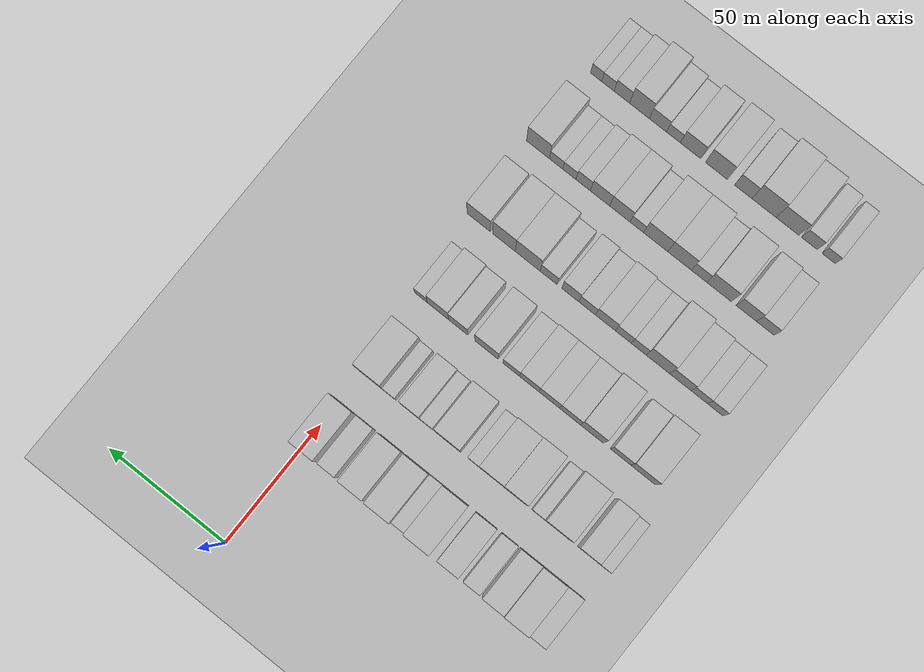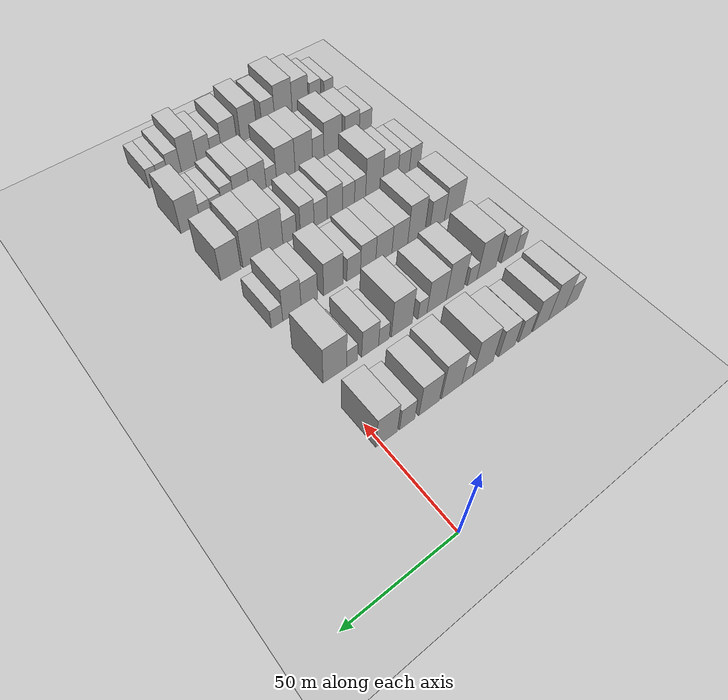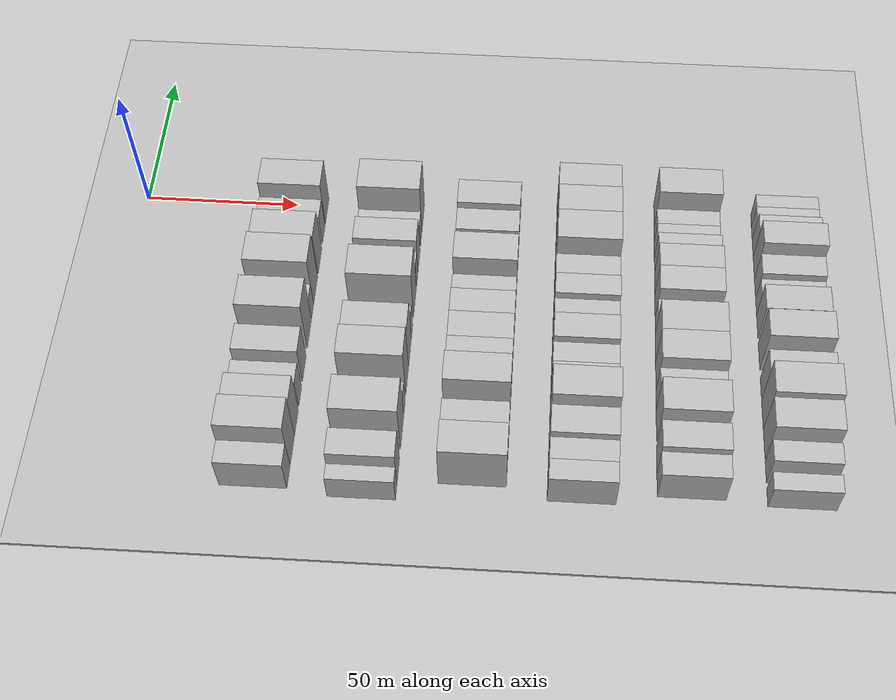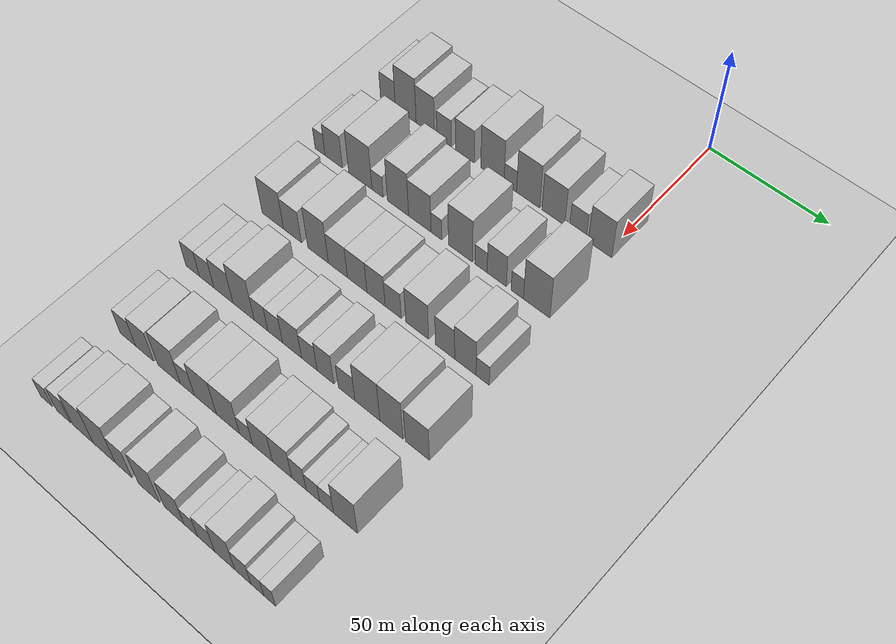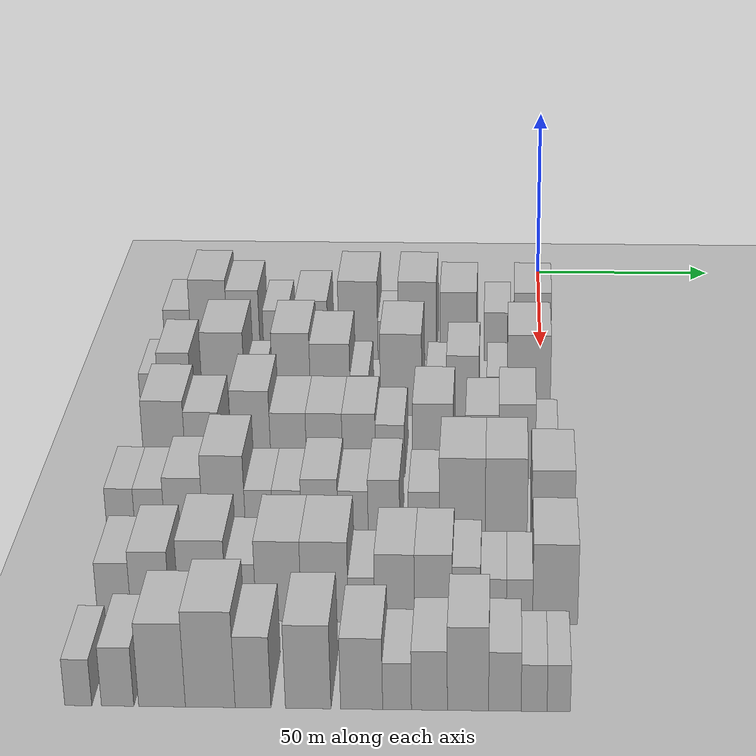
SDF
<sdf version="1.6">
 <world name="default">
  <include><name>ground_plane_1</name><uri>model://HANNAS_ground_plane</uri></include>
  <include>
   <name>ground_plane_2</name>
   <uri>model://HANNAS_ground_plane</uri>
   <pose>100 0 0  0 0 0</pose>
  </include>
  <model name="building_50">
   <static>1</static>
   <pose>50.0000 -99.4085 0 0.000000 0.000000 0.000000</pose>
   <link name="link">
    <pose>0 0 7.50 0 0 0</pose>
    <collision name="collision"><geometry><box><size>20.0000 7.2495 15.0000</size></box></geometry></collision>
    <visual name="visual">
     <cast_shadows>0</cast_shadows>
     <geometry><box><size>20.0000 7.2495 15.0000</size></box></geometry>
     <material>
      <script>
       <uri>model://HANNAS_wall/materials/scripts</uri>
       <uri>model://HANNAS_wall/materials/textures</uri>
       <name>vrc/HANNAS_wall</name>
      </script>
     </material>
    </visual>
   </link>
  </model>
  <model name="building_51">
   <static>1</static>
   <pose>50.0000 -90.7654 0 0.000000 0.000000 0.000000</pose>
   <link name="link">
    <pose>0 0 12.00 0 0 0</pose>
    <collision name="collision"><geometry><box><size>20.0000 10.0367 24.0000</size></box></geometry></collision>
    <visual name="visual">
     <cast_shadows>0</cast_shadows>
     <geometry><box><size>20.0000 10.0367 24.0000</size></box></geometry>
     <material>
      <script>
       <uri>model://HANNAS_wall/materials/scripts</uri>
       <uri>model://HANNAS_wall/materials/textures</uri>
       <name>vrc/HANNAS_wall</name>
      </script>
     </material>
    </visual>
   </link>
  </model>
  <model name="building_52">
   <static>1</static>
   <pose>50.0000 -81.3214 0 0.000000 0.000000 0.000000</pose>
   <link name="link">
    <pose>0 0 10.50 0 0 0</pose>
    <collision name="collision"><geometry><box><size>20.0000 8.8512 21.0000</size></box></geometry></collision>
    <visual name="visual">
     <cast_shadows>0</cast_shadows>
     <geometry><box><size>20.0000 8.8512 21.0000</size></box></geometry>
     <material>
      <script>
       <uri>model://HANNAS_wall/materials/scripts</uri>
       <uri>model://HANNAS_wall/materials/textures</uri>
       <name>vrc/HANNAS_wall</name>
      </script>
     </material>
    </visual>
   </link>
  </model>
  <model name="building_53">
   <static>1</static>
   <pose>50.0000 -72.4730 0 0.000000 0.000000 0.000000</pose>
   <link name="link">
    <pose>0 0 7.50 0 0 0</pose>
    <collision name="collision"><geometry><box><size>20.0000 6.8455 15.0000</size></box></geometry></collision>
    <visual name="visual">
     <cast_shadows>0</cast_shadows>
     <geometry><box><size>20.0000 6.8455 15.0000</size></box></geometry>
     <material>
      <script>
       <uri>model://HANNAS_wall/materials/scripts</uri>
       <uri>model://HANNAS_wall/materials/textures</uri>
       <name>vrc/HANNAS_wall</name>
      </script>
     </material>
    </visual>
   </link>
  </model>
  <model name="building_54">
   <static>1</static>
   <pose>50.0000 -62.6387 0 0.000000 0.000000 0.000000</pose>
   <link name="link">
    <pose>0 0 9.00 0 0 0</pose>
    <collision name="collision"><geometry><box><size>20.0000 8.8231 18.0000</size></box></geometry></collision>
    <visual name="visual">
     <cast_shadows>0</cast_shadows>
     <geometry><box><size>20.0000 8.8231 18.0000</size></box></geometry>
     <material>
      <script>
       <uri>model://HANNAS_wall/materials/scripts</uri>
       <uri>model://HANNAS_wall/materials/textures</uri>
       <name>vrc/HANNAS_wall</name>
      </script>
     </material>
    </visual>
   </link>
  </model>
  <model name="building_55">
   <static>1</static>
   <pose>50.0000 -49.9104 0 0.000000 0.000000 0.000000</pose>
   <link name="link">
    <pose>0 0 12.00 0 0 0</pose>
    <collision name="collision"><geometry><box><size>20.0000 10.6335 24.0000</size></box></geometry></collision>
    <visual name="visual">
     <cast_shadows>0</cast_shadows>
     <geometry><box><size>20.0000 10.6335 24.0000</size></box></geometry>
     <material>
      <script>
       <uri>model://HANNAS_wall/materials/scripts</uri>
       <uri>model://HANNAS_wall/materials/textures</uri>
       <name>vrc/HANNAS_wall</name>
      </script>
     </material>
    </visual>
   </link>
  </model>
  <model name="building_56">
   <static>1</static>
   <pose>50.0000 -41.7730 0 0.000000 0.000000 0.000000</pose>
   <link name="link">
    <pose>0 0 6.00 0 0 0</pose>
    <collision name="collision"><geometry><box><size>20.0000 5.6413 12.0000</size></box></geometry></collision>
    <visual name="visual">
     <cast_shadows>0</cast_shadows>
     <geometry><box><size>20.0000 5.6413 12.0000</size></box></geometry>
     <material>
      <script>
       <uri>model://HANNAS_wall/materials/scripts</uri>
       <uri>model://HANNAS_wall/materials/textures</uri>
       <name>vrc/HANNAS_wall</name>
      </script>
     </material>
    </visual>
   </link>
  </model>
  <model name="building_57">
   <static>1</static>
   <pose>50.0000 -33.7671 0 0.000000 0.000000 0.000000</pose>
   <link name="link">
    <pose>0 0 12.00 0 0 0</pose>
    <collision name="collision"><geometry><box><size>20.0000 10.3705 24.0000</size></box></geometry></collision>
    <visual name="visual">
     <cast_shadows>0</cast_shadows>
     <geometry><box><size>20.0000 10.3705 24.0000</size></box></geometry>
     <material>
      <script>
       <uri>model://HANNAS_wall/materials/scripts</uri>
       <uri>model://HANNAS_wall/materials/textures</uri>
       <name>vrc/HANNAS_wall</name>
      </script>
     </material>
    </visual>
   </link>
  </model>
  <model name="building_58">
   <static>1</static>
   <pose>50.0000 -22.5808 0 0.000000 0.000000 0.000000</pose>
   <link name="link">
    <pose>0 0 10.50 0 0 0</pose>
    <collision name="collision"><geometry><box><size>20.0000 10.0020 21.0000</size></box></geometry></collision>
    <visual name="visual">
     <cast_shadows>0</cast_shadows>
     <geometry><box><size>20.0000 10.0020 21.0000</size></box></geometry>
     <material>
      <script>
       <uri>model://HANNAS_wall/materials/scripts</uri>
       <uri>model://HANNAS_wall/materials/textures</uri>
       <name>vrc/HANNAS_wall</name>
      </script>
     </material>
    </visual>
   </link>
  </model>
  <model name="building_59">
   <static>1</static>
   <pose>50.0000 -11.9805 0 0.000000 0.000000 0.000000</pose>
   <link name="link">
    <pose>0 0 7.50 0 0 0</pose>
    <collision name="collision"><geometry><box><size>20.0000 7.1987 15.0000</size></box></geometry></collision>
    <visual name="visual">
     <cast_shadows>0</cast_shadows>
     <geometry><box><size>20.0000 7.1987 15.0000</size></box></geometry>
     <material>
      <script>
       <uri>model://HANNAS_wall/materials/scripts</uri>
       <uri>model://HANNAS_wall/materials/textures</uri>
       <name>vrc/HANNAS_wall</name>
      </script>
     </material>
    </visual>
   </link>
  </model>
  <model name="building_60">
   <static>1</static>
   <pose>50.0000 -2.3744 0 0.000000 0.000000 0.000000</pose>
   <link name="link">
    <pose>0 0 10.50 0 0 0</pose>
    <collision name="collision"><geometry><box><size>20.0000 10.0136 21.0000</size></box></geometry></collision>
    <visual name="visual">
     <cast_shadows>0</cast_shadows>
     <geometry><box><size>20.0000 10.0136 21.0000</size></box></geometry>
     <material>
      <script>
       <uri>model://HANNAS_wall/materials/scripts</uri>
       <uri>model://HANNAS_wall/materials/textures</uri>
       <name>vrc/HANNAS_wall</name>
      </script>
     </material>
    </visual>
   </link>
  </model>
  <model name="building_177">
   <static>1</static>
   <pose>82.0000 -102.4024 0 0.000000 0.000000 0.000000</pose>
   <link name="link">
    <pose>0 0 6.00 0 0 0</pose>
    <collision name="collision"><geometry><box><size>20.0000 4.8992 12.0000</size></box></geometry></collision>
    <visual name="visual">
     <cast_shadows>0</cast_shadows>
     <geometry><box><size>20.0000 4.8992 12.0000</size></box></geometry>
     <material>
      <script>
       <uri>model://HANNAS_wall/materials/scripts</uri>
       <uri>model://HANNAS_wall/materials/textures</uri>
       <name>vrc/HANNAS_wall</name>
      </script>
     </material>
    </visual>
   </link>
  </model>
  <model name="building_178">
   <static>1</static>
   <pose>82.0000 -95.7210 0 0.000000 0.000000 0.000000</pose>
   <link name="link">
    <pose>0 0 9.00 0 0 0</pose>
    <collision name="collision"><geometry><box><size>20.0000 8.4636 18.0000</size></box></geometry></collision>
    <visual name="visual">
     <cast_shadows>0</cast_shadows>
     <geometry><box><size>20.0000 8.4636 18.0000</size></box></geometry>
     <material>
      <script>
       <uri>model://HANNAS_wall/materials/scripts</uri>
       <uri>model://HANNAS_wall/materials/textures</uri>
       <name>vrc/HANNAS_wall</name>
      </script>
     </material>
    </visual>
   </link>
  </model>
  <model name="building_179">
   <static>1</static>
   <pose>82.0000 -82.9380 0 0.000000 0.000000 0.000000</pose>
   <link name="link">
    <pose>0 0 12.00 0 0 0</pose>
    <collision name="collision"><geometry><box><size>20.0000 11.1023 24.0000</size></box></geometry></collision>
    <visual name="visual">
     <cast_shadows>0</cast_shadows>
     <geometry><box><size>20.0000 11.1023 24.0000</size></box></geometry>
     <material>
      <script>
       <uri>model://HANNAS_wall/materials/scripts</uri>
       <uri>model://HANNAS_wall/materials/textures</uri>
       <name>vrc/HANNAS_wall</name>
      </script>
     </material>
    </visual>
   </link>
  </model>
  <model name="building_180">
   <static>1</static>
   <pose>82.0000 -74.7324 0 0.000000 0.000000 0.000000</pose>
   <link name="link">
    <pose>0 0 6.00 0 0 0</pose>
    <collision name="collision"><geometry><box><size>20.0000 5.3090 12.0000</size></box></geometry></collision>
    <visual name="visual">
     <cast_shadows>0</cast_shadows>
     <geometry><box><size>20.0000 5.3090 12.0000</size></box></geometry>
     <material>
      <script>
       <uri>model://HANNAS_wall/materials/scripts</uri>
       <uri>model://HANNAS_wall/materials/textures</uri>
       <name>vrc/HANNAS_wall</name>
      </script>
     </material>
    </visual>
   </link>
  </model>
  <model name="building_181">
   <static>1</static>
   <pose>82.0000 -65.1785 0 0.000000 0.000000 0.000000</pose>
   <link name="link">
    <pose>0 0 12.00 0 0 0</pose>
    <collision name="collision"><geometry><box><size>20.0000 9.7988 24.0000</size></box></geometry></collision>
    <visual name="visual">
     <cast_shadows>0</cast_shadows>
     <geometry><box><size>20.0000 9.7988 24.0000</size></box></geometry>
     <material>
      <script>
       <uri>model://HANNAS_wall/materials/scripts</uri>
       <uri>model://HANNAS_wall/materials/textures</uri>
       <name>vrc/HANNAS_wall</name>
      </script>
     </material>
    </visual>
   </link>
  </model>
  <model name="building_182">
   <static>1</static>
   <pose>82.0000 -55.1193 0 0.000000 0.000000 0.000000</pose>
   <link name="link">
    <pose>0 0 10.50 0 0 0</pose>
    <collision name="collision"><geometry><box><size>20.0000 10.3196 21.0000</size></box></geometry></collision>
    <visual name="visual">
     <cast_shadows>0</cast_shadows>
     <geometry><box><size>20.0000 10.3196 21.0000</size></box></geometry>
     <material>
      <script>
       <uri>model://HANNAS_wall/materials/scripts</uri>
       <uri>model://HANNAS_wall/materials/textures</uri>
       <name>vrc/HANNAS_wall</name>
      </script>
     </material>
    </visual>
   </link>
  </model>
  <model name="building_183">
   <static>1</static>
   <pose>82.0000 -47.5341 0 0.000000 0.000000 0.000000</pose>
   <link name="link">
    <pose>0 0 6.00 0 0 0</pose>
    <collision name="collision"><geometry><box><size>20.0000 4.8509 12.0000</size></box></geometry></collision>
    <visual name="visual">
     <cast_shadows>0</cast_shadows>
     <geometry><box><size>20.0000 4.8509 12.0000</size></box></geometry>
     <material>
      <script>
       <uri>model://HANNAS_wall/materials/scripts</uri>
       <uri>model://HANNAS_wall/materials/textures</uri>
       <name>vrc/HANNAS_wall</name>
      </script>
     </material>
    </visual>
   </link>
  </model>
  <model name="building_184">
   <static>1</static>
   <pose>82.0000 -36.7290 0 0.000000 0.000000 0.000000</pose>
   <link name="link">
    <pose>0 0 12.00 0 0 0</pose>
    <collision name="collision"><geometry><box><size>20.0000 10.7592 24.0000</size></box></geometry></collision>
    <visual name="visual">
     <cast_shadows>0</cast_shadows>
     <geometry><box><size>20.0000 10.7592 24.0000</size></box></geometry>
     <material>
      <script>
       <uri>model://HANNAS_wall/materials/scripts</uri>
       <uri>model://HANNAS_wall/materials/textures</uri>
       <name>vrc/HANNAS_wall</name>
      </script>
     </material>
    </visual>
   </link>
  </model>
  <model name="building_185">
   <static>1</static>
   <pose>82.0000 -27.6430 0 0.000000 0.000000 0.000000</pose>
   <link name="link">
    <pose>0 0 6.00 0 0 0</pose>
    <collision name="collision"><geometry><box><size>20.0000 5.4128 12.0000</size></box></geometry></collision>
    <visual name="visual">
     <cast_shadows>0</cast_shadows>
     <geometry><box><size>20.0000 5.4128 12.0000</size></box></geometry>
     <material>
      <script>
       <uri>model://HANNAS_wall/materials/scripts</uri>
       <uri>model://HANNAS_wall/materials/textures</uri>
       <name>vrc/HANNAS_wall</name>
      </script>
     </material>
    </visual>
   </link>
  </model>
  <model name="building_186">
   <static>1</static>
   <pose>82.0000 -20.7385 0 0.000000 0.000000 0.000000</pose>
   <link name="link">
    <pose>0 0 9.00 0 0 0</pose>
    <collision name="collision"><geometry><box><size>20.0000 8.3961 18.0000</size></box></geometry></collision>
    <visual name="visual">
     <cast_shadows>0</cast_shadows>
     <geometry><box><size>20.0000 8.3961 18.0000</size></box></geometry>
     <material>
      <script>
       <uri>model://HANNAS_wall/materials/scripts</uri>
       <uri>model://HANNAS_wall/materials/textures</uri>
       <name>vrc/HANNAS_wall</name>
      </script>
     </material>
    </visual>
   </link>
  </model>
  <model name="building_187">
   <static>1</static>
   <pose>82.0000 -11.8810 0 0.000000 0.000000 0.000000</pose>
   <link name="link">
    <pose>0 0 6.00 0 0 0</pose>
    <collision name="collision"><geometry><box><size>20.0000 5.3189 12.0000</size></box></geometry></collision>
    <visual name="visual">
     <cast_shadows>0</cast_shadows>
     <geometry><box><size>20.0000 5.3189 12.0000</size></box></geometry>
     <material>
      <script>
       <uri>model://HANNAS_wall/materials/scripts</uri>
       <uri>model://HANNAS_wall/materials/textures</uri>
       <name>vrc/HANNAS_wall</name>
      </script>
     </material>
    </visual>
   </link>
  </model>
  <model name="building_188">
   <static>1</static>
   <pose>82.0000 -3.6198 0 0.000000 0.000000 0.000000</pose>
   <link name="link">
    <pose>0 0 12.00 0 0 0</pose>
    <collision name="collision"><geometry><box><size>20.0000 11.2035 24.0000</size></box></geometry></collision>
    <visual name="visual">
     <cast_shadows>0</cast_shadows>
     <geometry><box><size>20.0000 11.2035 24.0000</size></box></geometry>
     <material>
      <script>
       <uri>model://HANNAS_wall/materials/scripts</uri>
       <uri>model://HANNAS_wall/materials/textures</uri>
       <name>vrc/HANNAS_wall</name>
      </script>
     </material>
    </visual>
   </link>
  </model>
  <model name="building_302">
   <static>1</static>
   <pose>114.0000 -93.7261 0 0.000000 0.000000 0.000000</pose>
   <link name="link">
    <pose>0 0 10.50 0 0 0</pose>
    <collision name="collision"><geometry><box><size>20.0000 10.3192 21.0000</size></box></geometry></collision>
    <visual name="visual">
     <cast_shadows>0</cast_shadows>
     <geometry><box><size>20.0000 10.3192 21.0000</size></box></geometry>
     <material>
      <script>
       <uri>model://HANNAS_wall/materials/scripts</uri>
       <uri>model://HANNAS_wall/materials/textures</uri>
       <name>vrc/HANNAS_wall</name>
      </script>
     </material>
    </visual>
   </link>
  </model>
  <model name="building_303">
   <static>1</static>
   <pose>114.0000 -84.3029 0 0.000000 0.000000 0.000000</pose>
   <link name="link">
    <pose>0 0 9.00 0 0 0</pose>
    <collision name="collision"><geometry><box><size>20.0000 8.5273 18.0000</size></box></geometry></collision>
    <visual name="visual">
     <cast_shadows>0</cast_shadows>
     <geometry><box><size>20.0000 8.5273 18.0000</size></box></geometry>
     <material>
      <script>
       <uri>model://HANNAS_wall/materials/scripts</uri>
       <uri>model://HANNAS_wall/materials/textures</uri>
       <name>vrc/HANNAS_wall</name>
      </script>
     </material>
    </visual>
   </link>
  </model>
  <model name="building_304">
   <static>1</static>
   <pose>114.0000 -72.2288 0 0.000000 0.000000 0.000000</pose>
   <link name="link">
    <pose>0 0 12.00 0 0 0</pose>
    <collision name="collision"><geometry><box><size>20.0000 9.6209 24.0000</size></box></geometry></collision>
    <visual name="visual">
     <cast_shadows>0</cast_shadows>
     <geometry><box><size>20.0000 9.6209 24.0000</size></box></geometry>
     <material>
      <script>
       <uri>model://HANNAS_wall/materials/scripts</uri>
       <uri>model://HANNAS_wall/materials/textures</uri>
       <name>vrc/HANNAS_wall</name>
      </script>
     </material>
    </visual>
   </link>
  </model>
  <model name="building_305">
   <static>1</static>
   <pose>114.0000 -63.0106 0 0.000000 0.000000 0.000000</pose>
   <link name="link">
    <pose>0 0 9.00 0 0 0</pose>
    <collision name="collision"><geometry><box><size>20.0000 8.8154 18.0000</size></box></geometry></collision>
    <visual name="visual">
     <cast_shadows>0</cast_shadows>
     <geometry><box><size>20.0000 8.8154 18.0000</size></box></geometry>
     <material>
      <script>
       <uri>model://HANNAS_wall/materials/scripts</uri>
       <uri>model://HANNAS_wall/materials/textures</uri>
       <name>vrc/HANNAS_wall</name>
      </script>
     </material>
    </visual>
   </link>
  </model>
  <model name="building_306">
   <static>1</static>
   <pose>114.0000 -54.1677 0 0.000000 0.000000 0.000000</pose>
   <link name="link">
    <pose>0 0 9.00 0 0 0</pose>
    <collision name="collision"><geometry><box><size>20.0000 8.8706 18.0000</size></box></geometry></collision>
    <visual name="visual">
     <cast_shadows>0</cast_shadows>
     <geometry><box><size>20.0000 8.8706 18.0000</size></box></geometry>
     <material>
      <script>
       <uri>model://HANNAS_wall/materials/scripts</uri>
       <uri>model://HANNAS_wall/materials/textures</uri>
       <name>vrc/HANNAS_wall</name>
      </script>
     </material>
    </visual>
   </link>
  </model>
  <model name="building_307">
   <static>1</static>
   <pose>114.0000 -45.6502 0 0.000000 0.000000 0.000000</pose>
   <link name="link">
    <pose>0 0 9.00 0 0 0</pose>
    <collision name="collision"><geometry><box><size>20.0000 8.1643 18.0000</size></box></geometry></collision>
    <visual name="visual">
     <cast_shadows>0</cast_shadows>
     <geometry><box><size>20.0000 8.1643 18.0000</size></box></geometry>
     <material>
      <script>
       <uri>model://HANNAS_wall/materials/scripts</uri>
       <uri>model://HANNAS_wall/materials/textures</uri>
       <name>vrc/HANNAS_wall</name>
      </script>
     </material>
    </visual>
   </link>
  </model>
  <model name="building_308">
   <static>1</static>
   <pose>114.0000 -37.9941 0 0.000000 0.000000 0.000000</pose>
   <link name="link">
    <pose>0 0 7.50 0 0 0</pose>
    <collision name="collision"><geometry><box><size>20.0000 7.1481 15.0000</size></box></geometry></collision>
    <visual name="visual">
     <cast_shadows>0</cast_shadows>
     <geometry><box><size>20.0000 7.1481 15.0000</size></box></geometry>
     <material>
      <script>
       <uri>model://HANNAS_wall/materials/scripts</uri>
       <uri>model://HANNAS_wall/materials/textures</uri>
       <name>vrc/HANNAS_wall</name>
      </script>
     </material>
    </visual>
   </link>
  </model>
  <model name="building_309">
   <static>1</static>
   <pose>114.0000 -27.4370 0 0.000000 0.000000 0.000000</pose>
   <link name="link">
    <pose>0 0 10.50 0 0 0</pose>
    <collision name="collision"><geometry><box><size>20.0000 9.9662 21.0000</size></box></geometry></collision>
    <visual name="visual">
     <cast_shadows>0</cast_shadows>
     <geometry><box><size>20.0000 9.9662 21.0000</size></box></geometry>
     <material>
      <script>
       <uri>model://HANNAS_wall/materials/scripts</uri>
       <uri>model://HANNAS_wall/materials/textures</uri>
       <name>vrc/HANNAS_wall</name>
      </script>
     </material>
    </visual>
   </link>
  </model>
  <model name="building_310">
   <static>1</static>
   <pose>114.0000 -15.3526 0 0.000000 0.000000 0.000000</pose>
   <link name="link">
    <pose>0 0 9.00 0 0 0</pose>
    <collision name="collision"><geometry><box><size>20.0000 8.2026 18.0000</size></box></geometry></collision>
    <visual name="visual">
     <cast_shadows>0</cast_shadows>
     <geometry><box><size>20.0000 8.2026 18.0000</size></box></geometry>
     <material>
      <script>
       <uri>model://HANNAS_wall/materials/scripts</uri>
       <uri>model://HANNAS_wall/materials/textures</uri>
       <name>vrc/HANNAS_wall</name>
      </script>
     </material>
    </visual>
   </link>
  </model>
  <model name="building_311">
   <static>1</static>
   <pose>114.0000 -6.7382 0 0.000000 0.000000 0.000000</pose>
   <link name="link">
    <pose>0 0 10.50 0 0 0</pose>
    <collision name="collision"><geometry><box><size>20.0000 9.0262 21.0000</size></box></geometry></collision>
    <visual name="visual">
     <cast_shadows>0</cast_shadows>
     <geometry><box><size>20.0000 9.0262 21.0000</size></box></geometry>
     <material>
      <script>
       <uri>model://HANNAS_wall/materials/scripts</uri>
       <uri>model://HANNAS_wall/materials/textures</uri>
       <name>vrc/HANNAS_wall</name>
      </script>
     </material>
    </visual>
   </link>
  </model>
  <model name="building_312">
   <static>1</static>
   <pose>114.0000 0.5414 0 0.000000 0.000000 0.000000</pose>
   <link name="link">
    <pose>0 0 6.00 0 0 0</pose>
    <collision name="collision"><geometry><box><size>20.0000 5.5328 12.0000</size></box></geometry></collision>
    <visual name="visual">
     <cast_shadows>0</cast_shadows>
     <geometry><box><size>20.0000 5.5328 12.0000</size></box></geometry>
     <material>
      <script>
       <uri>model://HANNAS_wall/materials/scripts</uri>
       <uri>model://HANNAS_wall/materials/textures</uri>
       <name>vrc/HANNAS_wall</name>
      </script>
     </material>
    </visual>
   </link>
  </model>
  <model name="building_415">
   <static>1</static>
   <pose>146.0000 -99.3203 0 0.000000 0.000000 0.000000</pose>
   <link name="link">
    <pose>0 0 7.50 0 0 0</pose>
    <collision name="collision"><geometry><box><size>20.0000 6.5827 15.0000</size></box></geometry></collision>
    <visual name="visual">
     <cast_shadows>0</cast_shadows>
     <geometry><box><size>20.0000 6.5827 15.0000</size></box></geometry>
     <material>
      <script>
       <uri>model://HANNAS_wall/materials/scripts</uri>
       <uri>model://HANNAS_wall/materials/textures</uri>
       <name>vrc/HANNAS_wall</name>
      </script>
     </material>
    </visual>
   </link>
  </model>
  <model name="building_416">
   <static>1</static>
   <pose>146.0000 -92.5564 0 0.000000 0.000000 0.000000</pose>
   <link name="link">
    <pose>0 0 7.50 0 0 0</pose>
    <collision name="collision"><geometry><box><size>20.0000 6.9451 15.0000</size></box></geometry></collision>
    <visual name="visual">
     <cast_shadows>0</cast_shadows>
     <geometry><box><size>20.0000 6.9451 15.0000</size></box></geometry>
     <material>
      <script>
       <uri>model://HANNAS_wall/materials/scripts</uri>
       <uri>model://HANNAS_wall/materials/textures</uri>
       <name>vrc/HANNAS_wall</name>
      </script>
     </material>
    </visual>
   </link>
  </model>
  <model name="building_417">
   <static>1</static>
   <pose>146.0000 -84.5841 0 0.000000 0.000000 0.000000</pose>
   <link name="link">
    <pose>0 0 9.00 0 0 0</pose>
    <collision name="collision"><geometry><box><size>20.0000 8.9996 18.0000</size></box></geometry></collision>
    <visual name="visual">
     <cast_shadows>0</cast_shadows>
     <geometry><box><size>20.0000 8.9996 18.0000</size></box></geometry>
     <material>
      <script>
       <uri>model://HANNAS_wall/materials/scripts</uri>
       <uri>model://HANNAS_wall/materials/textures</uri>
       <name>vrc/HANNAS_wall</name>
      </script>
     </material>
    </visual>
   </link>
  </model>
  <model name="building_418">
   <static>1</static>
   <pose>146.0000 -75.1028 0 0.000000 0.000000 0.000000</pose>
   <link name="link">
    <pose>0 0 12.00 0 0 0</pose>
    <collision name="collision"><geometry><box><size>20.0000 9.9630 24.0000</size></box></geometry></collision>
    <visual name="visual">
     <cast_shadows>0</cast_shadows>
     <geometry><box><size>20.0000 9.9630 24.0000</size></box></geometry>
     <material>
      <script>
       <uri>model://HANNAS_wall/materials/scripts</uri>
       <uri>model://HANNAS_wall/materials/textures</uri>
       <name>vrc/HANNAS_wall</name>
      </script>
     </material>
    </visual>
   </link>
  </model>
  <model name="building_419">
   <static>1</static>
   <pose>146.0000 -66.9551 0 0.000000 0.000000 0.000000</pose>
   <link name="link">
    <pose>0 0 7.50 0 0 0</pose>
    <collision name="collision"><geometry><box><size>20.0000 6.3325 15.0000</size></box></geometry></collision>
    <visual name="visual">
     <cast_shadows>0</cast_shadows>
     <geometry><box><size>20.0000 6.3325 15.0000</size></box></geometry>
     <material>
      <script>
       <uri>model://HANNAS_wall/materials/scripts</uri>
       <uri>model://HANNAS_wall/materials/textures</uri>
       <name>vrc/HANNAS_wall</name>
      </script>
     </material>
    </visual>
   </link>
  </model>
  <model name="building_420">
   <static>1</static>
   <pose>146.0000 -60.4178 0 0.000000 0.000000 0.000000</pose>
   <link name="link">
    <pose>0 0 7.50 0 0 0</pose>
    <collision name="collision"><geometry><box><size>20.0000 6.7422 15.0000</size></box></geometry></collision>
    <visual name="visual">
     <cast_shadows>0</cast_shadows>
     <geometry><box><size>20.0000 6.7422 15.0000</size></box></geometry>
     <material>
      <script>
       <uri>model://HANNAS_wall/materials/scripts</uri>
       <uri>model://HANNAS_wall/materials/textures</uri>
       <name>vrc/HANNAS_wall</name>
      </script>
     </material>
    </visual>
   </link>
  </model>
  <model name="building_421">
   <static>1</static>
   <pose>146.0000 -52.7703 0 0.000000 0.000000 0.000000</pose>
   <link name="link">
    <pose>0 0 9.00 0 0 0</pose>
    <collision name="collision"><geometry><box><size>20.0000 8.5527 18.0000</size></box></geometry></collision>
    <visual name="visual">
     <cast_shadows>0</cast_shadows>
     <geometry><box><size>20.0000 8.5527 18.0000</size></box></geometry>
     <material>
      <script>
       <uri>model://HANNAS_wall/materials/scripts</uri>
       <uri>model://HANNAS_wall/materials/textures</uri>
       <name>vrc/HANNAS_wall</name>
      </script>
     </material>
    </visual>
   </link>
  </model>
  <model name="building_422">
   <static>1</static>
   <pose>146.0000 -44.9862 0 0.000000 0.000000 0.000000</pose>
   <link name="link">
    <pose>0 0 7.50 0 0 0</pose>
    <collision name="collision"><geometry><box><size>20.0000 7.0156 15.0000</size></box></geometry></collision>
    <visual name="visual">
     <cast_shadows>0</cast_shadows>
     <geometry><box><size>20.0000 7.0156 15.0000</size></box></geometry>
     <material>
      <script>
       <uri>model://HANNAS_wall/materials/scripts</uri>
       <uri>model://HANNAS_wall/materials/textures</uri>
       <name>vrc/HANNAS_wall</name>
      </script>
     </material>
    </visual>
   </link>
  </model>
  <model name="building_423">
   <static>1</static>
   <pose>146.0000 -37.7949 0 0.000000 0.000000 0.000000</pose>
   <link name="link">
    <pose>0 0 9.00 0 0 0</pose>
    <collision name="collision"><geometry><box><size>20.0000 7.3670 18.0000</size></box></geometry></collision>
    <visual name="visual">
     <cast_shadows>0</cast_shadows>
     <geometry><box><size>20.0000 7.3670 18.0000</size></box></geometry>
     <material>
      <script>
       <uri>model://HANNAS_wall/materials/scripts</uri>
       <uri>model://HANNAS_wall/materials/textures</uri>
       <name>vrc/HANNAS_wall</name>
      </script>
     </material>
    </visual>
   </link>
  </model>
  <model name="building_424">
   <static>1</static>
   <pose>146.0000 -28.5038 0 0.000000 0.000000 0.000000</pose>
   <link name="link">
    <pose>0 0 7.50 0 0 0</pose>
    <collision name="collision"><geometry><box><size>20.0000 7.2151 15.0000</size></box></geometry></collision>
    <visual name="visual">
     <cast_shadows>0</cast_shadows>
     <geometry><box><size>20.0000 7.2151 15.0000</size></box></geometry>
     <material>
      <script>
       <uri>model://HANNAS_wall/materials/scripts</uri>
       <uri>model://HANNAS_wall/materials/textures</uri>
       <name>vrc/HANNAS_wall</name>
      </script>
     </material>
    </visual>
   </link>
  </model>
  <model name="building_425">
   <static>1</static>
   <pose>146.0000 -19.5504 0 0.000000 0.000000 0.000000</pose>
   <link name="link">
    <pose>0 0 12.00 0 0 0</pose>
    <collision name="collision"><geometry><box><size>20.0000 10.6918 24.0000</size></box></geometry></collision>
    <visual name="visual">
     <cast_shadows>0</cast_shadows>
     <geometry><box><size>20.0000 10.6918 24.0000</size></box></geometry>
     <material>
      <script>
       <uri>model://HANNAS_wall/materials/scripts</uri>
       <uri>model://HANNAS_wall/materials/textures</uri>
       <name>vrc/HANNAS_wall</name>
      </script>
     </material>
    </visual>
   </link>
  </model>
  <model name="building_426">
   <static>1</static>
   <pose>146.0000 -9.3372 0 0.000000 0.000000 0.000000</pose>
   <link name="link">
    <pose>0 0 12.00 0 0 0</pose>
    <collision name="collision"><geometry><box><size>20.0000 9.7345 24.0000</size></box></geometry></collision>
    <visual name="visual">
     <cast_shadows>0</cast_shadows>
     <geometry><box><size>20.0000 9.7345 24.0000</size></box></geometry>
     <material>
      <script>
       <uri>model://HANNAS_wall/materials/scripts</uri>
       <uri>model://HANNAS_wall/materials/textures</uri>
       <name>vrc/HANNAS_wall</name>
      </script>
     </material>
    </visual>
   </link>
  </model>
  <model name="building_427">
   <static>1</static>
   <pose>146.0000 1.5293 0 0.000000 0.000000 0.000000</pose>
   <link name="link">
    <pose>0 0 10.50 0 0 0</pose>
    <collision name="collision"><geometry><box><size>20.0000 9.9984 21.0000</size></box></geometry></collision>
    <visual name="visual">
     <cast_shadows>0</cast_shadows>
     <geometry><box><size>20.0000 9.9984 21.0000</size></box></geometry>
     <material>
      <script>
       <uri>model://HANNAS_wall/materials/scripts</uri>
       <uri>model://HANNAS_wall/materials/textures</uri>
       <name>vrc/HANNAS_wall</name>
      </script>
     </material>
    </visual>
   </link>
  </model>
  <model name="building_541">
   <static>1</static>
   <pose>178.0000 -95.6926 0 0.000000 0.000000 0.000000</pose>
   <link name="link">
    <pose>0 0 7.50 0 0 0</pose>
    <collision name="collision"><geometry><box><size>20.0000 7.4101 15.0000</size></box></geometry></collision>
    <visual name="visual">
     <cast_shadows>0</cast_shadows>
     <geometry><box><size>20.0000 7.4101 15.0000</size></box></geometry>
     <material>
      <script>
       <uri>model://HANNAS_wall/materials/scripts</uri>
       <uri>model://HANNAS_wall/materials/textures</uri>
       <name>vrc/HANNAS_wall</name>
      </script>
     </material>
    </visual>
   </link>
  </model>
  <model name="building_542">
   <static>1</static>
   <pose>178.0000 -87.6691 0 0.000000 0.000000 0.000000</pose>
   <link name="link">
    <pose>0 0 9.00 0 0 0</pose>
    <collision name="collision"><geometry><box><size>20.0000 8.6369 18.0000</size></box></geometry></collision>
    <visual name="visual">
     <cast_shadows>0</cast_shadows>
     <geometry><box><size>20.0000 8.6369 18.0000</size></box></geometry>
     <material>
      <script>
       <uri>model://HANNAS_wall/materials/scripts</uri>
       <uri>model://HANNAS_wall/materials/textures</uri>
       <name>vrc/HANNAS_wall</name>
      </script>
     </material>
    </visual>
   </link>
  </model>
  <model name="building_543">
   <static>1</static>
   <pose>178.0000 -76.1070 0 0.000000 0.000000 0.000000</pose>
   <link name="link">
    <pose>0 0 10.50 0 0 0</pose>
    <collision name="collision"><geometry><box><size>20.0000 10.4871 21.0000</size></box></geometry></collision>
    <visual name="visual">
     <cast_shadows>0</cast_shadows>
     <geometry><box><size>20.0000 10.4871 21.0000</size></box></geometry>
     <material>
      <script>
       <uri>model://HANNAS_wall/materials/scripts</uri>
       <uri>model://HANNAS_wall/materials/textures</uri>
       <name>vrc/HANNAS_wall</name>
      </script>
     </material>
    </visual>
   </link>
  </model>
  <model name="building_544">
   <static>1</static>
   <pose>178.0000 -67.5922 0 0.000000 0.000000 0.000000</pose>
   <link name="link">
    <pose>0 0 7.50 0 0 0</pose>
    <collision name="collision"><geometry><box><size>20.0000 6.5425 15.0000</size></box></geometry></collision>
    <visual name="visual">
     <cast_shadows>0</cast_shadows>
     <geometry><box><size>20.0000 6.5425 15.0000</size></box></geometry>
     <material>
      <script>
       <uri>model://HANNAS_wall/materials/scripts</uri>
       <uri>model://HANNAS_wall/materials/textures</uri>
       <name>vrc/HANNAS_wall</name>
      </script>
     </material>
    </visual>
   </link>
  </model>
  <model name="building_545">
   <static>1</static>
   <pose>178.0000 -59.3137 0 0.000000 0.000000 0.000000</pose>
   <link name="link">
    <pose>0 0 10.50 0 0 0</pose>
    <collision name="collision"><geometry><box><size>20.0000 10.0145 21.0000</size></box></geometry></collision>
    <visual name="visual">
     <cast_shadows>0</cast_shadows>
     <geometry><box><size>20.0000 10.0145 21.0000</size></box></geometry>
     <material>
      <script>
       <uri>model://HANNAS_wall/materials/scripts</uri>
       <uri>model://HANNAS_wall/materials/textures</uri>
       <name>vrc/HANNAS_wall</name>
      </script>
     </material>
    </visual>
   </link>
  </model>
  <model name="building_546">
   <static>1</static>
   <pose>178.0000 -49.1341 0 0.000000 0.000000 0.000000</pose>
   <link name="link">
    <pose>0 0 10.50 0 0 0</pose>
    <collision name="collision"><geometry><box><size>20.0000 10.3448 21.0000</size></box></geometry></collision>
    <visual name="visual">
     <cast_shadows>0</cast_shadows>
     <geometry><box><size>20.0000 10.3448 21.0000</size></box></geometry>
     <material>
      <script>
       <uri>model://HANNAS_wall/materials/scripts</uri>
       <uri>model://HANNAS_wall/materials/textures</uri>
       <name>vrc/HANNAS_wall</name>
      </script>
     </material>
    </visual>
   </link>
  </model>
  <model name="building_547">
   <static>1</static>
   <pose>178.0000 -41.0578 0 0.000000 0.000000 0.000000</pose>
   <link name="link">
    <pose>0 0 6.00 0 0 0</pose>
    <collision name="collision"><geometry><box><size>20.0000 5.8079 12.0000</size></box></geometry></collision>
    <visual name="visual">
     <cast_shadows>0</cast_shadows>
     <geometry><box><size>20.0000 5.8079 12.0000</size></box></geometry>
     <material>
      <script>
       <uri>model://HANNAS_wall/materials/scripts</uri>
       <uri>model://HANNAS_wall/materials/textures</uri>
       <name>vrc/HANNAS_wall</name>
      </script>
     </material>
    </visual>
   </link>
  </model>
  <model name="building_548">
   <static>1</static>
   <pose>178.0000 -33.7849 0 0.000000 0.000000 0.000000</pose>
   <link name="link">
    <pose>0 0 9.00 0 0 0</pose>
    <collision name="collision"><geometry><box><size>20.0000 8.7379 18.0000</size></box></geometry></collision>
    <visual name="visual">
     <cast_shadows>0</cast_shadows>
     <geometry><box><size>20.0000 8.7379 18.0000</size></box></geometry>
     <material>
      <script>
       <uri>model://HANNAS_wall/materials/scripts</uri>
       <uri>model://HANNAS_wall/materials/textures</uri>
       <name>vrc/HANNAS_wall</name>
      </script>
     </material>
    </visual>
   </link>
  </model>
  <model name="building_549">
   <static>1</static>
   <pose>178.0000 -25.2641 0 0.000000 0.000000 0.000000</pose>
   <link name="link">
    <pose>0 0 9.00 0 0 0</pose>
    <collision name="collision"><geometry><box><size>20.0000 8.3037 18.0000</size></box></geometry></collision>
    <visual name="visual">
     <cast_shadows>0</cast_shadows>
     <geometry><box><size>20.0000 8.3037 18.0000</size></box></geometry>
     <material>
      <script>
       <uri>model://HANNAS_wall/materials/scripts</uri>
       <uri>model://HANNAS_wall/materials/textures</uri>
       <name>vrc/HANNAS_wall</name>
      </script>
     </material>
    </visual>
   </link>
  </model>
  <model name="building_550">
   <static>1</static>
   <pose>178.0000 -18.0295 0 0.000000 0.000000 0.000000</pose>
   <link name="link">
    <pose>0 0 7.50 0 0 0</pose>
    <collision name="collision"><geometry><box><size>20.0000 6.1655 15.0000</size></box></geometry></collision>
    <visual name="visual">
     <cast_shadows>0</cast_shadows>
     <geometry><box><size>20.0000 6.1655 15.0000</size></box></geometry>
     <material>
      <script>
       <uri>model://HANNAS_wall/materials/scripts</uri>
       <uri>model://HANNAS_wall/materials/textures</uri>
       <name>vrc/HANNAS_wall</name>
      </script>
     </material>
    </visual>
   </link>
  </model>
  <model name="building_551">
   <static>1</static>
   <pose>178.0000 -12.0992 0 0.000000 0.000000 0.000000</pose>
   <link name="link">
    <pose>0 0 6.00 0 0 0</pose>
    <collision name="collision"><geometry><box><size>20.0000 5.6950 12.0000</size></box></geometry></collision>
    <visual name="visual">
     <cast_shadows>0</cast_shadows>
     <geometry><box><size>20.0000 5.6950 12.0000</size></box></geometry>
     <material>
      <script>
       <uri>model://HANNAS_wall/materials/scripts</uri>
       <uri>model://HANNAS_wall/materials/textures</uri>
       <name>vrc/HANNAS_wall</name>
      </script>
     </material>
    </visual>
   </link>
  </model>
  <model name="building_552">
   <static>1</static>
   <pose>178.0000 -6.3636 0 0.000000 0.000000 0.000000</pose>
   <link name="link">
    <pose>0 0 6.00 0 0 0</pose>
    <collision name="collision"><geometry><box><size>20.0000 5.7761 12.0000</size></box></geometry></collision>
    <visual name="visual">
     <cast_shadows>0</cast_shadows>
     <geometry><box><size>20.0000 5.7761 12.0000</size></box></geometry>
     <material>
      <script>
       <uri>model://HANNAS_wall/materials/scripts</uri>
       <uri>model://HANNAS_wall/materials/textures</uri>
       <name>vrc/HANNAS_wall</name>
      </script>
     </material>
    </visual>
   </link>
  </model>
  <model name="building_553">
   <static>1</static>
   <pose>178.0000 1.4807 0 0.000000 0.000000 0.000000</pose>
   <link name="link">
    <pose>0 0 10.50 0 0 0</pose>
    <collision name="collision"><geometry><box><size>20.0000 9.9126 21.0000</size></box></geometry></collision>
    <visual name="visual">
     <cast_shadows>0</cast_shadows>
     <geometry><box><size>20.0000 9.9126 21.0000</size></box></geometry>
     <material>
      <script>
       <uri>model://HANNAS_wall/materials/scripts</uri>
       <uri>model://HANNAS_wall/materials/textures</uri>
       <name>vrc/HANNAS_wall</name>
      </script>
     </material>
    </visual>
   </link>
  </model>
  <model name="building_663">
   <static>1</static>
   <pose>210.0000 -97.9035 0 0.000000 0.000000 0.000000</pose>
   <link name="link">
    <pose>0 0 6.00 0 0 0</pose>
    <collision name="collision"><geometry><box><size>20.0000 5.6134 12.0000</size></box></geometry></collision>
    <visual name="visual">
     <cast_shadows>0</cast_shadows>
     <geometry><box><size>20.0000 5.6134 12.0000</size></box></geometry>
     <material>
      <script>
       <uri>model://HANNAS_wall/materials/scripts</uri>
       <uri>model://HANNAS_wall/materials/textures</uri>
       <name>vrc/HANNAS_wall</name>
      </script>
     </material>
    </visual>
   </link>
  </model>
  <model name="building_664">
   <static>1</static>
   <pose>210.0000 -89.7241 0 0.000000 0.000000 0.000000</pose>
   <link name="link">
    <pose>0 0 7.50 0 0 0</pose>
    <collision name="collision"><geometry><box><size>20.0000 6.7452 15.0000</size></box></geometry></collision>
    <visual name="visual">
     <cast_shadows>0</cast_shadows>
     <geometry><box><size>20.0000 6.7452 15.0000</size></box></geometry>
     <material>
      <script>
       <uri>model://HANNAS_wall/materials/scripts</uri>
       <uri>model://HANNAS_wall/materials/textures</uri>
       <name>vrc/HANNAS_wall</name>
      </script>
     </material>
    </visual>
   </link>
  </model>
  <model name="building_665">
   <static>1</static>
   <pose>210.0000 -80.4945 0 0.000000 0.000000 0.000000</pose>
   <link name="link">
    <pose>0 0 10.50 0 0 0</pose>
    <collision name="collision"><geometry><box><size>20.0000 9.7140 21.0000</size></box></geometry></collision>
    <visual name="visual">
     <cast_shadows>0</cast_shadows>
     <geometry><box><size>20.0000 9.7140 21.0000</size></box></geometry>
     <material>
      <script>
       <uri>model://HANNAS_wall/materials/scripts</uri>
       <uri>model://HANNAS_wall/materials/textures</uri>
       <name>vrc/HANNAS_wall</name>
      </script>
     </material>
    </visual>
   </link>
  </model>
  <model name="building_666">
   <static>1</static>
   <pose>210.0000 -70.4699 0 0.000000 0.000000 0.000000</pose>
   <link name="link">
    <pose>0 0 12.00 0 0 0</pose>
    <collision name="collision"><geometry><box><size>20.0000 10.3352 24.0000</size></box></geometry></collision>
    <visual name="visual">
     <cast_shadows>0</cast_shadows>
     <geometry><box><size>20.0000 10.3352 24.0000</size></box></geometry>
     <material>
      <script>
       <uri>model://HANNAS_wall/materials/scripts</uri>
       <uri>model://HANNAS_wall/materials/textures</uri>
       <name>vrc/HANNAS_wall</name>
      </script>
     </material>
    </visual>
   </link>
  </model>
  <model name="building_667">
   <static>1</static>
   <pose>210.0000 -61.5912 0 0.000000 0.000000 0.000000</pose>
   <link name="link">
    <pose>0 0 9.00 0 0 0</pose>
    <collision name="collision"><geometry><box><size>20.0000 7.4222 18.0000</size></box></geometry></collision>
    <visual name="visual">
     <cast_shadows>0</cast_shadows>
     <geometry><box><size>20.0000 7.4222 18.0000</size></box></geometry>
     <material>
      <script>
       <uri>model://HANNAS_wall/materials/scripts</uri>
       <uri>model://HANNAS_wall/materials/textures</uri>
       <name>vrc/HANNAS_wall</name>
      </script>
     </material>
    </visual>
   </link>
  </model>
  <model name="building_668">
   <static>1</static>
   <pose>210.0000 -50.1575 0 0.000000 0.000000 0.000000</pose>
   <link name="link">
    <pose>0 0 10.50 0 0 0</pose>
    <collision name="collision"><geometry><box><size>20.0000 9.4451 21.0000</size></box></geometry></collision>
    <visual name="visual">
     <cast_shadows>0</cast_shadows>
     <geometry><box><size>20.0000 9.4451 21.0000</size></box></geometry>
     <material>
      <script>
       <uri>model://HANNAS_wall/materials/scripts</uri>
       <uri>model://HANNAS_wall/materials/textures</uri>
       <name>vrc/HANNAS_wall</name>
      </script>
     </material>
    </visual>
   </link>
  </model>
  <model name="building_669">
   <static>1</static>
   <pose>210.0000 -39.0838 0 0.000000 0.000000 0.000000</pose>
   <link name="link">
    <pose>0 0 9.00 0 0 0</pose>
    <collision name="collision"><geometry><box><size>20.0000 8.7024 18.0000</size></box></geometry></collision>
    <visual name="visual">
     <cast_shadows>0</cast_shadows>
     <geometry><box><size>20.0000 8.7024 18.0000</size></box></geometry>
     <material>
      <script>
       <uri>model://HANNAS_wall/materials/scripts</uri>
       <uri>model://HANNAS_wall/materials/textures</uri>
       <name>vrc/HANNAS_wall</name>
      </script>
     </material>
    </visual>
   </link>
  </model>
  <model name="building_670">
   <static>1</static>
   <pose>210.0000 -31.7608 0 0.000000 0.000000 0.000000</pose>
   <link name="link">
    <pose>0 0 6.00 0 0 0</pose>
    <collision name="collision"><geometry><box><size>20.0000 5.9436 12.0000</size></box></geometry></collision>
    <visual name="visual">
     <cast_shadows>0</cast_shadows>
     <geometry><box><size>20.0000 5.9436 12.0000</size></box></geometry>
     <material>
      <script>
       <uri>model://HANNAS_wall/materials/scripts</uri>
       <uri>model://HANNAS_wall/materials/textures</uri>
       <name>vrc/HANNAS_wall</name>
      </script>
     </material>
    </visual>
   </link>
  </model>
  <model name="building_671">
   <static>1</static>
   <pose>210.0000 -25.0738 0 0.000000 0.000000 0.000000</pose>
   <link name="link">
    <pose>0 0 7.50 0 0 0</pose>
    <collision name="collision"><geometry><box><size>20.0000 7.4304 15.0000</size></box></geometry></collision>
    <visual name="visual">
     <cast_shadows>0</cast_shadows>
     <geometry><box><size>20.0000 7.4304 15.0000</size></box></geometry>
     <material>
      <script>
       <uri>model://HANNAS_wall/materials/scripts</uri>
       <uri>model://HANNAS_wall/materials/textures</uri>
       <name>vrc/HANNAS_wall</name>
      </script>
     </material>
    </visual>
   </link>
  </model>
  <model name="building_672">
   <static>1</static>
   <pose>210.0000 -17.0943 0 0.000000 0.000000 0.000000</pose>
   <link name="link">
    <pose>0 0 10.50 0 0 0</pose>
    <collision name="collision"><geometry><box><size>20.0000 8.5284 21.0000</size></box></geometry></collision>
    <visual name="visual">
     <cast_shadows>0</cast_shadows>
     <geometry><box><size>20.0000 8.5284 21.0000</size></box></geometry>
     <material>
      <script>
       <uri>model://HANNAS_wall/materials/scripts</uri>
       <uri>model://HANNAS_wall/materials/textures</uri>
       <name>vrc/HANNAS_wall</name>
      </script>
     </material>
    </visual>
   </link>
  </model>
  <model name="building_673">
   <static>1</static>
   <pose>210.0000 -9.4826 0 0.000000 0.000000 0.000000</pose>
   <link name="link">
    <pose>0 0 7.50 0 0 0</pose>
    <collision name="collision"><geometry><box><size>20.0000 6.6950 15.0000</size></box></geometry></collision>
    <visual name="visual">
     <cast_shadows>0</cast_shadows>
     <geometry><box><size>20.0000 6.6950 15.0000</size></box></geometry>
     <material>
      <script>
       <uri>model://HANNAS_wall/materials/scripts</uri>
       <uri>model://HANNAS_wall/materials/textures</uri>
       <name>vrc/HANNAS_wall</name>
      </script>
     </material>
    </visual>
   </link>
  </model>
  <model name="building_674">
   <static>1</static>
   <pose>210.0000 -3.4523 0 0.000000 0.000000 0.000000</pose>
   <link name="link">
    <pose>0 0 6.00 0 0 0</pose>
    <collision name="collision"><geometry><box><size>20.0000 5.3658 12.0000</size></box></geometry></collision>
    <visual name="visual">
     <cast_shadows>0</cast_shadows>
     <geometry><box><size>20.0000 5.3658 12.0000</size></box></geometry>
     <material>
      <script>
       <uri>model://HANNAS_wall/materials/scripts</uri>
       <uri>model://HANNAS_wall/materials/textures</uri>
       <name>vrc/HANNAS_wall</name>
      </script>
     </material>
    </visual>
   </link>
  </model>
  <model name="building_675">
   <static>1</static>
   <pose>210.0000 1.6363 0 0.000000 0.000000 0.000000</pose>
   <link name="link">
    <pose>0 0 6.00 0 0 0</pose>
    <collision name="collision"><geometry><box><size>20.0000 4.8114 12.0000</size></box></geometry></collision>
    <visual name="visual">
     <cast_shadows>0</cast_shadows>
     <geometry><box><size>20.0000 4.8114 12.0000</size></box></geometry>
     <material>
      <script>
       <uri>model://HANNAS_wall/materials/scripts</uri>
       <uri>model://HANNAS_wall/materials/textures</uri>
       <name>vrc/HANNAS_wall</name>
      </script>
     </material>
    </visual>
   </link>
  </model>
 </world>
</sdf>
